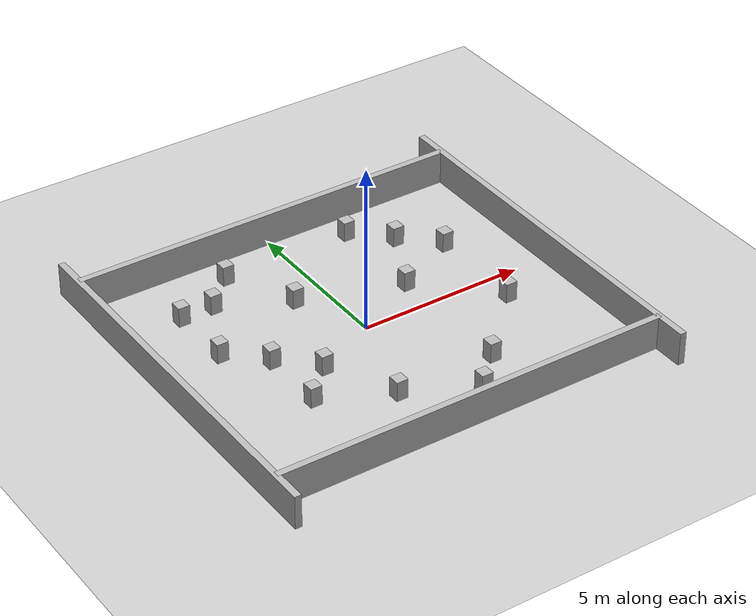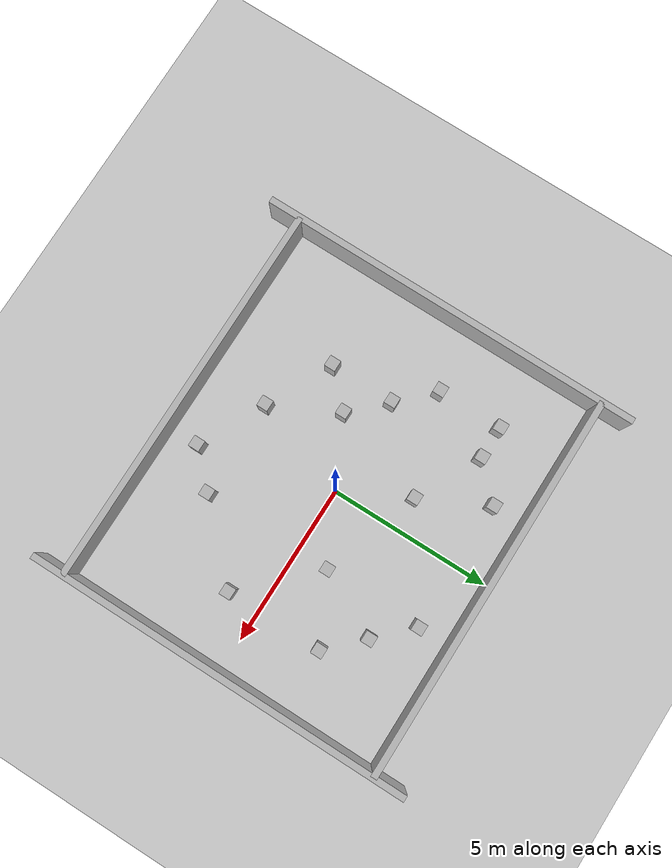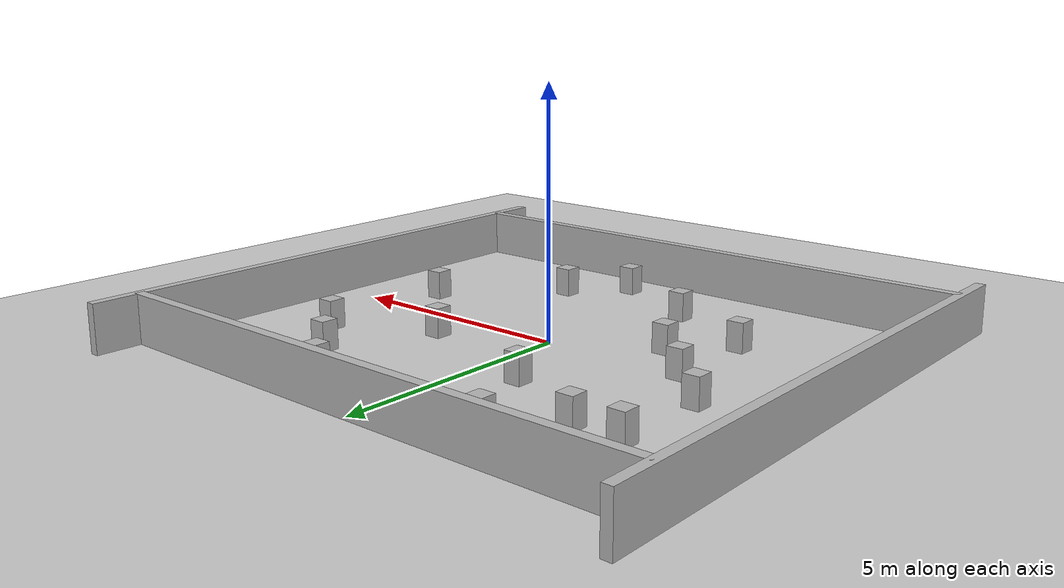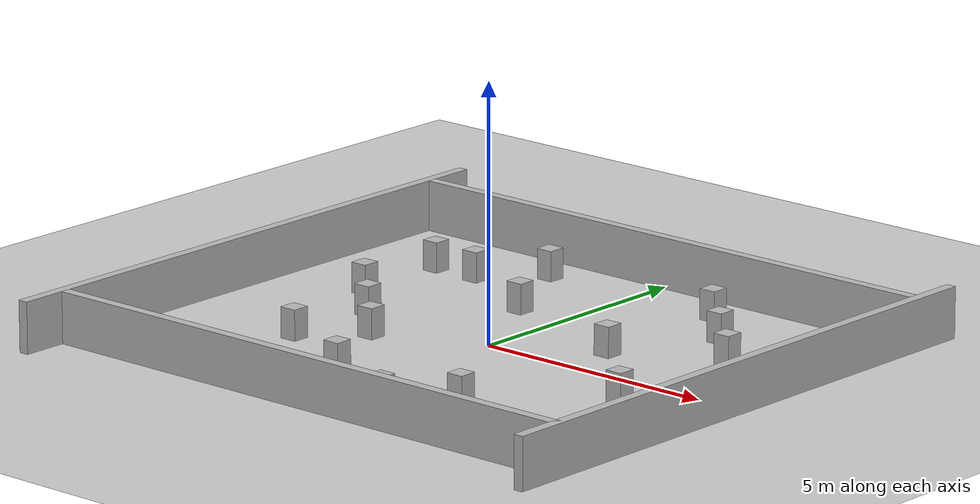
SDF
<?xml version="1.0" ?>

<sdf version="1.6">
  <world name="dwa_test_world">

```
<include>
  <uri>model://ground_plane</uri>
</include>

<include>
  <uri>model://sun</uri>
</include>

<gui fullscreen='0'>
  <camera name='top_view'>
    <pose>0 0 3 0 1.57 0</pose>
  </camera>
</gui>

<!-- ================= WALLS ================= -->

<model name="wall_1">
  <static>true</static>
  <link name="link">
    <pose>0 5 0.5 0 0 0</pose>
    <collision name="collision"><geometry><box><size>12 0.2 1</size></box></geometry></collision>
    <visual name="visual"><geometry><box><size>12 0.2 1</size></box></geometry></visual>
  </link>
</model>

<model name="wall_2">
  <static>true</static>
  <link name="link">
    <pose>0 -5 0.5 0 0 0</pose>
    <collision name="collision"><geometry><box><size>12 0.2 1</size></box></geometry></collision>
    <visual name="visual"><geometry><box><size>12 0.2 1</size></box></geometry></visual>
  </link>
</model>

<model name="wall_3">
  <static>true</static>
  <link name="link">
    <pose>6 0 0.5 0 0 1.57</pose>
    <collision name="collision"><geometry><box><size>12 0.2 1</size></box></geometry></collision>
    <visual name="visual"><geometry><box><size>12 0.2 1</size></box></geometry></visual>
  </link>
</model>

<model name="wall_4">
  <static>true</static>
  <link name="link">
    <pose>-6 0 0.5 0 0 1.57</pose>
    <collision name="collision"><geometry><box><size>12 0.2 1</size></box></geometry></collision>
    <visual name="visual"><geometry><box><size>12 0.2 1</size></box></geometry></visual>
  </link>
</model>

<!-- ================= RESIZED OBSTACLES ================= -->
<!-- size: 0.35 x 0.35 x 0.6 -->

<!-- obs_1 -->
<model name="obs_1"><static>true</static><link name="link">
  <pose>-3 -2 0.3 0 0 0</pose>
  <collision name="collision"><geometry><box><size>0.35 0.35 0.6</size></box></geometry></collision>
  <visual name="visual"><geometry><box><size>0.35 0.35 0.6</size></box></geometry></visual>
</link></model>

<model name="obs_2"><static>true</static><link name="link">
  <pose>-1 2 0.3 0 0 0</pose>
  <collision name="collision"><geometry><box><size>0.35 0.35 0.6</size></box></geometry></collision>
  <visual name="visual"><geometry><box><size>0.35 0.35 0.6</size></box></geometry></visual>
</link></model>

<model name="obs_3"><static>true</static><link name="link">
  <pose>2 -3 0.3 0 0 0</pose>
  <collision name="collision"><geometry><box><size>0.35 0.35 0.6</size></box></geometry></collision>
  <visual name="visual"><geometry><box><size>0.35 0.35 0.6</size></box></geometry></visual>
</link></model>

<model name="obs_4"><static>true</static><link name="link">
  <pose>3 3 0.3 0 0 0</pose>
  <collision name="collision"><geometry><box><size>0.35 0.35 0.6</size></box></geometry></collision>
  <visual name="visual"><geometry><box><size>0.35 0.35 0.6</size></box></geometry></visual>
</link></model>

<model name="obs_5"><static>true</static><link name="link">
  <pose>-4 1 0.3 0 0 0</pose>
  <collision name="collision"><geometry><box><size>0.35 0.35 0.6</size></box></geometry></collision>
  <visual name="visual"><geometry><box><size>0.35 0.35 0.6</size></box></geometry></visual>
</link></model>

<model name="obs_6"><static>true</static><link name="link">
  <pose>4 -1 0.3 0 0 0</pose>
  <collision name="collision"><geometry><box><size>0.35 0.35 0.6</size></box></geometry></collision>
  <visual name="visual"><geometry><box><size>0.35 0.35 0.6</size></box></geometry></visual>
</link></model>

<model name="obs_7"><static>true</static><link name="link">
  <pose>-2 4 0.3 0 0 0</pose>
  <collision name="collision"><geometry><box><size>0.35 0.35 0.6</size></box></geometry></collision>
  <visual name="visual"><geometry><box><size>0.35 0.35 0.6</size></box></geometry></visual>
</link></model>

<model name="obs_8"><static>true</static><link name="link">
  <pose>1 -4 0.3 0 0 0</pose>
  <collision name="collision"><geometry><box><size>0.35 0.35 0.6</size></box></geometry></collision>
  <visual name="visual"><geometry><box><size>0.35 0.35 0.6</size></box></geometry></visual>
</link></model>

<model name="obs_9"><static>true</static><link name="link">
  <pose>-3 3 0.3 0 0 0</pose>
  <collision name="collision"><geometry><box><size>0.35 0.35 0.6</size></box></geometry></collision>
  <visual name="visual"><geometry><box><size>0.35 0.35 0.6</size></box></geometry></visual>
</link></model>

<model name="obs_10"><static>true</static><link name="link">
  <pose>2 1 0.3 0 0 0</pose>
  <collision name="collision"><geometry><box><size>0.35 0.35 0.6</size></box></geometry></collision>
  <visual name="visual"><geometry><box><size>0.35 0.35 0.6</size></box></geometry></visual>
</link></model>

<model name="obs_11"><static>true</static><link name="link">
  <pose>-1 -3 0.3 0 0 0</pose>
  <collision name="collision"><geometry><box><size>0.35 0.35 0.6</size></box></geometry></collision>
  <visual name="visual"><geometry><box><size>0.35 0.35 0.6</size></box></geometry></visual>
</link></model>

<model name="obs_12"><static>true</static><link name="link">
  <pose>4 2 0.3 0 0 0</pose>
  <collision name="collision"><geometry><box><size>0.35 0.35 0.6</size></box></geometry></collision>
  <visual name="visual"><geometry><box><size>0.35 0.35 0.6</size></box></geometry></visual>
</link></model>

<model name="obs_13"><static>true</static><link name="link">
  <pose>-4 3 0.3 0 0 0</pose>
  <collision name="collision"><geometry><box><size>0.35 0.35 0.6</size></box></geometry></collision>
  <visual name="visual"><geometry><box><size>0.35 0.35 0.6</size></box></geometry></visual>
</link></model>

<model name="obs_14"><static>true</static><link name="link">
  <pose>-3 0 0.3 0 0 0</pose>
  <collision name="collision"><geometry><box><size>0.35 0.35 0.6</size></box></geometry></collision>
  <visual name="visual"><geometry><box><size>0.35 0.35 0.6</size></box></geometry></visual>
</link></model>

<model name="obs_15"><static>true</static><link name="link">
  <pose>-2 -1 0.3 0 0 0</pose>
  <collision name="collision"><geometry><box><size>0.35 0.35 0.6</size></box></geometry></collision>
  <visual name="visual"><geometry><box><size>0.35 0.35 0.6</size></box></geometry></visual>
</link></model>

<model name="obs_16"><static>true</static><link name="link">
  <pose>2 4 0.3 0 0 0</pose>
  <collision name="collision"><geometry><box><size>0.35 0.35 0.6</size></box></geometry></collision>
  <visual name="visual"><geometry><box><size>0.35 0.35 0.6</size></box></geometry></visual>
</link></model>
```

  </world>
</sdf>
